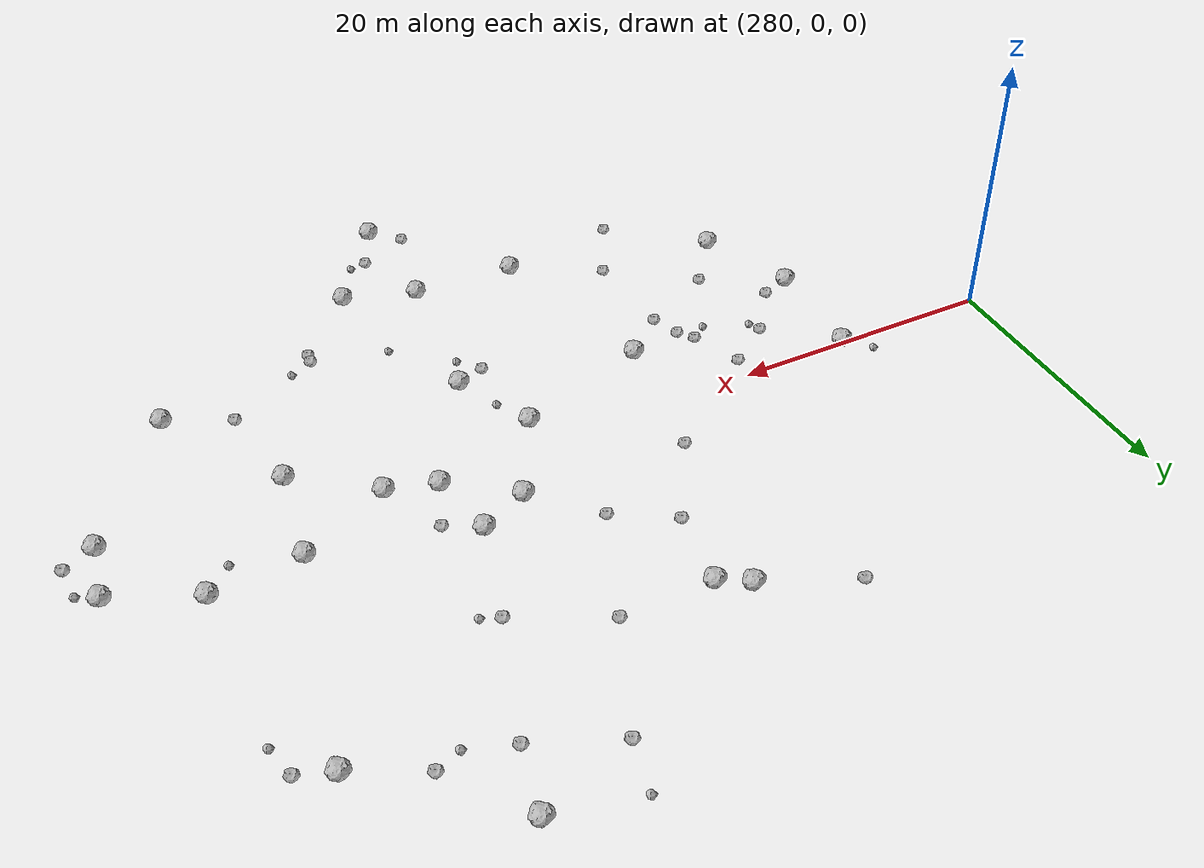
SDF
<sdf version="1.6">
 <world name="default">
  <include><uri>model://sun</uri></include>
  <model name="rock1_8_3">
   <include><uri>model://rock1</uri><pose>324.1779407617457 0.6417799542263403 0.5 0 0 0</pose></include>
  </model>
  <model name="rock1_8_4">
   <include><uri>model://rock1</uri><pose>306.388389522521 -5.889503268513906 0.5 0 0 0</pose></include>
  </model>
  <model name="rock1_8_5">
   <include><uri>model://rock1</uri><pose>345.83542543248694 -3.794194288385121 0.5 0 0 0</pose></include>
  </model>
  <model name="rock1_8_6">
   <include><uri>model://rock1</uri><pose>328.41319287553574 26.88596174623909 0.5 0 0 0</pose></include>
  </model>
  <model name="rock1_8_7">
   <include><uri>model://rock1</uri><pose>334.1029343046916 2.8054492804569833 0.5 0 0 0</pose></include>
  </model>
  <model name="rock1_8_8">
   <include><uri>model://rock1</uri><pose>327.7204730024708 -0.44352524907035473 0.5 0 0 0</pose></include>
  </model>
  <model name="rock1_8_9">
   <include><uri>model://rock1</uri><pose>339.34255768631004 -14.022627392859945 0.5 0 0 0</pose></include>
  </model>
  <model name="rock1_8_10">
   <include><uri>model://rock1</uri><pose>291.89060925193394 -0.1290471520689067 0.5 0 0 0</pose></include>
  </model>
  <model name="rock1_8_11">
   <include><uri>model://rock1</uri><pose>316.3139558025577 -2.469015113756722 0.5 0 0 0</pose></include>
  </model>
  <model name="rock1_8_12">
   <include><uri>model://rock1</uri><pose>319.5860440588193 4.066363961070586 0.5 0 0 0</pose></include>
  </model>
  <model name="rock1_8_13">
   <include><uri>model://rock1</uri><pose>333.31305712818283 -4.617637149870955 0.5 0 0 0</pose></include>
  </model>
  <model name="rock1_8_14">
   <include><uri>model://rock1</uri><pose>323.5758745195017 -21.94668111234048 0.5 0 0 0</pose></include>
  </model>
  <model name="rock1_8_15">
   <include><uri>model://rock1</uri><pose>294.64965986990416 -15.833071354972946 0.5 0 0 0</pose></include>
  </model>
  <model name="rock1_8_16">
   <include><uri>model://rock1</uri><pose>337.1589089669342 19.280006203136622 0.5 0 0 0</pose></include>
  </model>
  <model name="rock1_8_17">
   <include><uri>model://rock1</uri><pose>312.0267961328969 16.45659592695248 0.5 0 0 0</pose></include>
  </model>
  <model name="rock1_8_18">
   <include><uri>model://rock1</uri><pose>291.7061984612173 -8.538395990394832 0.5 0 0 0</pose></include>
  </model>
  <model name="rock1_8_19">
   <include><uri>model://rock1</uri><pose>310.4153767765205 -19.889783156503295 0.5 0 0 0</pose></include>
  </model>
  <model name="rock1_8_20">
   <include><uri>model://rock1</uri><pose>318.89699644738056 -29.60378474838542 0.5 0 0 0</pose></include>
  </model>
  <model name="rock1_8_21">
   <include><uri>model://rock1</uri><pose>309.96413778032365 17.699585183564658 0.5 0 0 0</pose></include>
  </model>
  <model name="rock1_8_22">
   <include><uri>model://rock1</uri><pose>318.1811071162654 -20.22355288323703 0.5 0 0 0</pose></include>
  </model>
  <model name="rock1_8_23">
   <include><uri>model://rock1</uri><pose>319.2275076668108 -8.453891601978409 0.5 0 0 0</pose></include>
  </model>
  <model name="rock1_8_24">
   <include><uri>model://rock1</uri><pose>346.3806287929974 0.6293630821552263 0.5 0 0 0</pose></include>
  </model>
  <model name="rock1_8_25">
   <include><uri>model://rock1</uri><pose>323.05095736198496 5.760603024082357 0.5 0 0 0</pose></include>
  </model>
  <model name="rock1_8_26">
   <include><uri>model://rock1</uri><pose>340.4436389084702 3.39173674318733 0.5 0 0 0</pose></include>
  </model>
  <model name="rock2_8_0">
   <include><uri>model://rock2</uri><pose>320.47054526930077 -25.732895253666932 0.3 0 0 0</pose></include>
  </model>
  <model name="rock2_8_1">
   <include><uri>model://rock2</uri><pose>334.68846646297527 -11.85058995099602 0.3 0 0 0</pose></include>
  </model>
  <model name="rock2_8_2">
   <include><uri>model://rock2</uri><pose>316.7455110881799 -27.61623757562831 0.3 0 0 0</pose></include>
  </model>
  <model name="rock2_8_3">
   <include><uri>model://rock2</uri><pose>317.14044860151535 -9.223989827363319 0.3 0 0 0</pose></include>
  </model>
  <model name="rock2_8_4">
   <include><uri>model://rock2</uri><pose>297.67310796813524 -11.665013103216253 0.3 0 0 0</pose></include>
  </model>
  <model name="rock2_8_5">
   <include><uri>model://rock2</uri><pose>348.00884613236457 -2.752336703013974 0.3 0 0 0</pose></include>
  </model>
  <model name="rock2_8_6">
   <include><uri>model://rock2</uri><pose>303.9099209189199 -16.172229294803387 0.3 0 0 0</pose></include>
  </model>
  <model name="rock2_8_7">
   <include><uri>model://rock2</uri><pose>301.3514358132486 -21.373695567032943 0.3 0 0 0</pose></include>
  </model>
  <model name="rock2_8_8">
   <include><uri>model://rock2</uri><pose>296.60454184875994 -4.06097205541889 0.3 0 0 0</pose></include>
  </model>
  <model name="rock2_8_9">
   <include><uri>model://rock2</uri><pose>339.52905843468244 18.3313187121515 0.3 0 0 0</pose></include>
  </model>
  <model name="rock2_8_10">
   <include><uri>model://rock2</uri><pose>307.68774525771164 4.557424524461048 0.3 0 0 0</pose></include>
  </model>
  <model name="rock2_8_11">
   <include><uri>model://rock2</uri><pose>324.921441126583 13.220127029872991 0.3 0 0 0</pose></include>
  </model>
  <model name="rock2_8_12">
   <include><uri>model://rock2</uri><pose>325.4565647565662 4.35799153942682 0.3 0 0 0</pose></include>
  </model>
  <model name="rock2_8_13">
   <include><uri>model://rock2</uri><pose>328.0558634525845 -15.675464642798488 0.3 0 0 0</pose></include>
  </model>
  <model name="rock2_8_14">
   <include><uri>model://rock2</uri><pose>318.5737577555768 16.429260523960785 0.3 0 0 0</pose></include>
  </model>
  <model name="rock2_8_15">
   <include><uri>model://rock2</uri><pose>315.4590554482462 8.22972788363019 0.3 0 0 0</pose></include>
  </model>
  <model name="rock2_8_16">
   <include><uri>model://rock2</uri><pose>303.2176173527661 -8.686811748199233 0.3 0 0 0</pose></include>
  </model>
  <model name="rock2_8_17">
   <include><uri>model://rock2</uri><pose>328.0066246956209 -16.440547160642744 0.3 0 0 0</pose></include>
  </model>
  <model name="rock2_8_18">
   <include><uri>model://rock2</uri><pose>299.8939450054965 -1.5971661906580188 0.3 0 0 0</pose></include>
  </model>
  <model name="rock2_8_19">
   <include><uri>model://rock2</uri><pose>327.5532773115837 22.11319586826321 0.3 0 0 0</pose></include>
  </model>
  <model name="rock2_8_20">
   <include><uri>model://rock2</uri><pose>321.8343397532149 24.617590815975873 0.3 0 0 0</pose></include>
  </model>
  <model name="rock2_8_21">
   <include><uri>model://rock2</uri><pose>293.8665810072814 -7.761804184794126 0.3 0 0 0</pose></include>
  </model>
  <model name="rock2_8_22">
   <include><uri>model://rock2</uri><pose>303.52389339840624 20.52736497679843 0.3 0 0 0</pose></include>
  </model>
  <model name="rock2_8_23">
   <include><uri>model://rock2</uri><pose>311.2783508370515 10.779958816049145 0.3 0 0 0</pose></include>
  </model>
  <model name="rock2_8_24">
   <include><uri>model://rock2</uri><pose>302.3815389296285 -6.509770509086408 0.3 0 0 0</pose></include>
  </model>
  <model name="rock2_8_25">
   <include><uri>model://rock2</uri><pose>332.4159646068382 21.65660437719614 0.3 0 0 0</pose></include>
  </model>
  <model name="rock2_8_26">
   <include><uri>model://rock2</uri><pose>301.50853756882725 -5.375112687319678 0.3 0 0 0</pose></include>
  </model>
  <model name="rock3_8_0">
   <include><uri>model://rock3</uri><pose>326.15827191424955 12.604529931263947 0.2 0 0 0</pose></include>
  </model>
  <model name="rock3_8_1">
   <include><uri>model://rock3</uri><pose>317.62344709252784 -5.149159217807178 0.2 0 0 0</pose></include>
  </model>
  <model name="rock3_8_2">
   <include><uri>model://rock3</uri><pose>330.63066294289246 20.891387295931622 0.2 0 0 0</pose></include>
  </model>
  <model name="rock3_8_3">
   <include><uri>model://rock3</uri><pose>347.7281684799612 -0.24598672619849538 0.2 0 0 0</pose></include>
  </model>
  <model name="rock3_8_4">
   <include><uri>model://rock3</uri><pose>322.4919025500543 28.236397525626515 0.2 0 0 0</pose></include>
  </model>
  <model name="rock3_8_5">
   <include><uri>model://rock3</uri><pose>300.23468250992585 -6.369069868872 0.2 0 0 0</pose></include>
  </model>
  <model name="rock3_8_6">
   <include><uri>model://rock3</uri><pose>338.5665912033729 1.4419784479045852 0.2 0 0 0</pose></include>
  </model>
  <model name="rock3_8_7">
   <include><uri>model://rock3</uri><pose>318.4177677705204 -10.90912085981089 0.2 0 0 0</pose></include>
  </model>
  <model name="rock3_8_8">
   <include><uri>model://rock3</uri><pose>340.1318612747732 15.977119313241012 0.2 0 0 0</pose></include>
  </model>
  <model name="rock3_8_9">
   <include><uri>model://rock3</uri><pose>290.07396997696407 1.571201636206773 0.2 0 0 0</pose></include>
  </model>
  <model name="rock3_8_10">
   <include><uri>model://rock3</uri><pose>321.68889650314196 -25.577661862763428 0.2 0 0 0</pose></include>
  </model>
  <model name="rock3_8_11">
   <include><uri>model://rock3</uri><pose>322.46519870289825 -14.332925779257568 0.2 0 0 0</pose></include>
  </model>
  <model name="rock3_8_12">
   <include><uri>model://rock3</uri><pose>329.68377448861213 -14.867745919021026 0.2 0 0 0</pose></include>
  </model>
  <model name="rock3_8_13">
   <include><uri>model://rock3</uri><pose>296.9410892543727 -5.046666673334496 0.2 0 0 0</pose></include>
  </model>
 </world>
</sdf>
